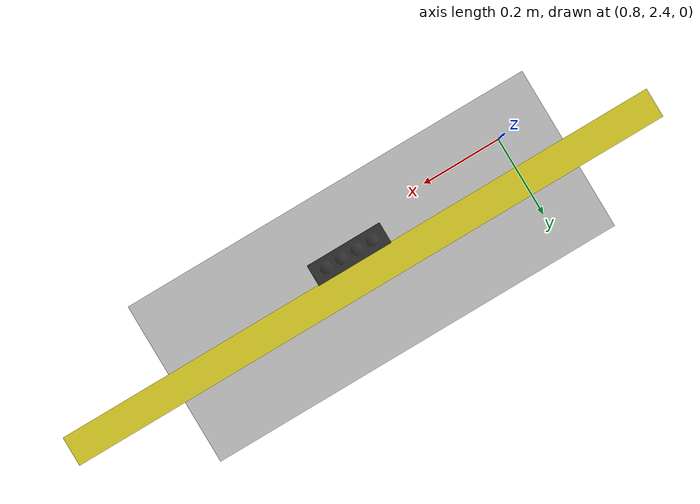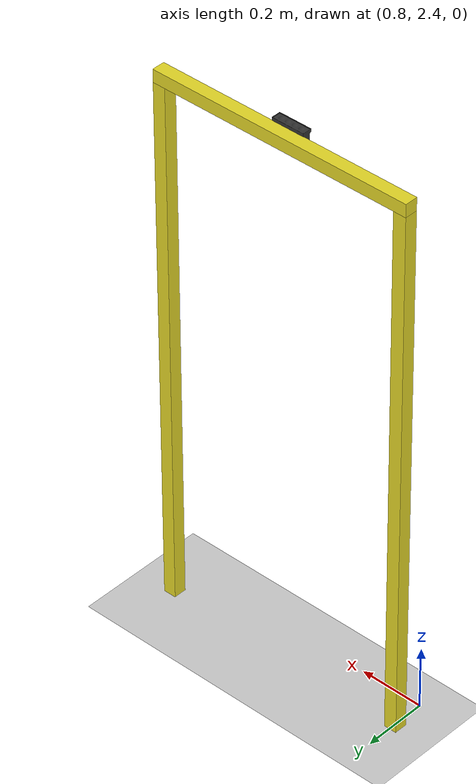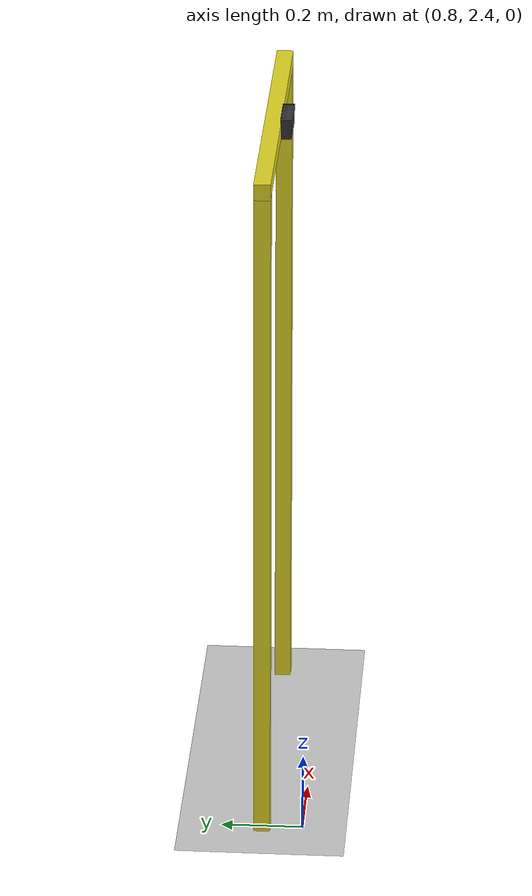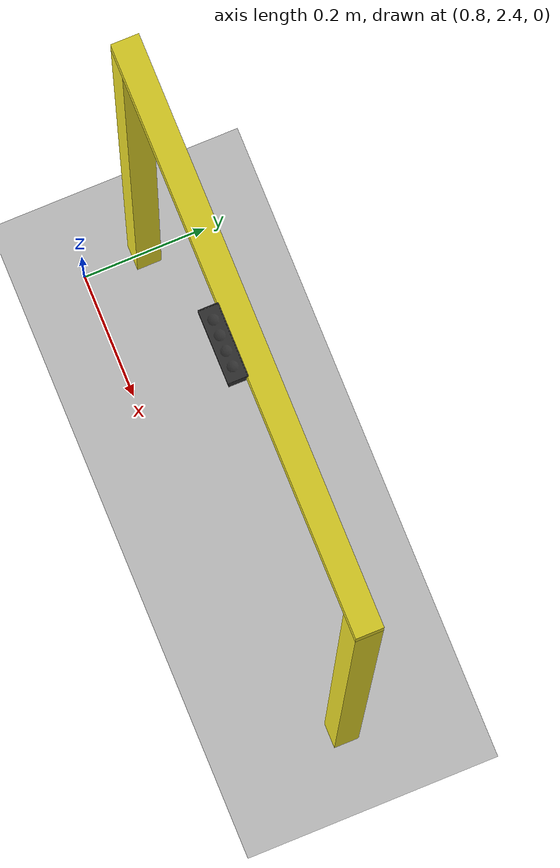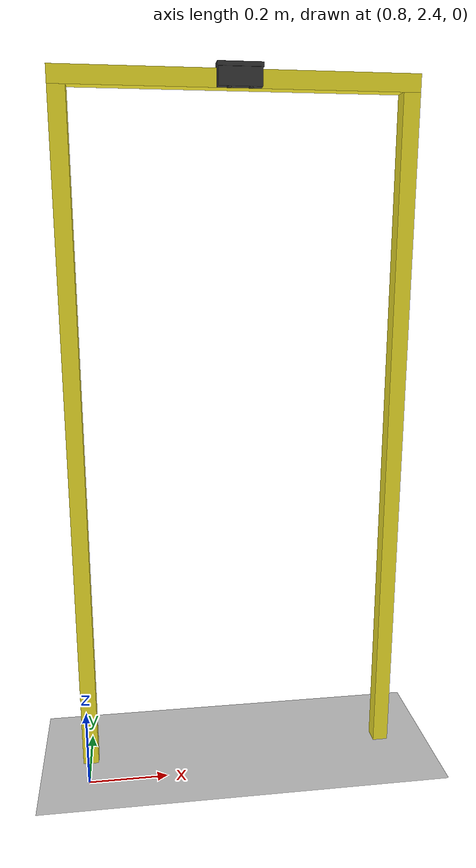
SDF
<sdf version="1.5">
 <world name="sortation_system_world">
  <physics type="ode">
   <max_step_size>0.00625</max_step_size>
   <real_time_factor>1</real_time_factor>
   <real_time_update_rate>160</real_time_update_rate>
   <gravity>0 0 -9.8</gravity>
  </physics>
  <scene><shadows>false</shadows></scene>
  <include><uri>model://ground_plane</uri></include>
  <include><uri>model://sun</uri></include>
  <include><uri>model://portal_frame</uri><pose>1.2 2.5 0 0 0 -1.571</pose></include>
  <include><uri>model://camera</uri><pose>1.2 2.467 1.735 1.571 0 0</pose></include>
 </world>
</sdf>

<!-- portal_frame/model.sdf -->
<sdf version="1.6">
  <model name="portal_frame">
    <static>true</static>
    <link name="link">

     <visual name="viz_top_bar">
        <pose>0 0 1.705 0 0 0</pose>
        <geometry>
          <box>
            <size>0.04 0.84 0.04</size>
          </box>
        </geometry>
        <material>
          <script>
            <uri>model://portal_frame/materials/scripts</uri>
            <uri>model://portal_frame/materials/textures</uri>
            <!-- name must match a name declared inside .material file -->
            <name>technical_saefty_yellow</name>
          </script>
        </material>
      </visual>

      <collision name="top_bar">
        <pose>0 0 1.705 0 0 0</pose>
        <geometry>
          <box>
            <size>0.04 0.84 0.04</size>
          </box>
        </geometry>
      </collision>

      <visual name="viz_front">
        <pose>0 0.4 0.835 0 0 0</pose>
        <geometry>
          <box>
            <size>0.04 0.04 1.7</size>
          </box>
        </geometry>
        <material>
          <script>
            <uri>model://portal_frame/materials/scripts</uri>
            <uri>model://portal_frame/materials/textures</uri>
            <name>technical_saefty_yellow</name>
          </script>
        </material>
      </visual>

      <collision name="front">
        <pose>0 0.4 0.835 0 0 0</pose>
        <geometry>
          <box>
            <size>0.04 0.04 1.7</size>
          </box>
        </geometry>
      </collision>

      <visual name="viz_back">
        <pose>0 -0.4 0.835 0 0 0</pose>
        <geometry>
          <box>
              <size>0.04 0.04 1.7</size>
          </box>
        </geometry>
        <material>
          <script>
            <uri>model://portal_frame/materials/scripts</uri>
            <uri>model://portal_frame/materials/textures</uri>
            <name>technical_saefty_yellow</name>
          </script>
        </material>
      </visual>

      <collision name="back">
        <pose>0 -0.4 0.835 0 0 0</pose>
        <geometry>
          <box>
              <size>0.04 0.04 1.7</size>
          </box>
        </geometry>
      </collision>

    </link>
  </model>
</sdf>

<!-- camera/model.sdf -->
<sdf version="1.6">
  <model name="camera">
    <static>true</static>
    <link name="link">
      <visual name="cam_visual">
        <geometry>
          <mesh>
            <uri>model://camera/meshes/camera.dae</uri>
            <scale>0.01 0.01 0.01</scale>
          </mesh>
        </geometry>
      </visual>

      <collision name="cam_collision">
        <pose>0 -0.025 0.0 0 0 0</pose>
        <geometry>
          <box>
            <size>0.105 0.05 0.03</size>
          </box>
        </geometry>
      </collision>

    </link>
  </model>
</sdf>
